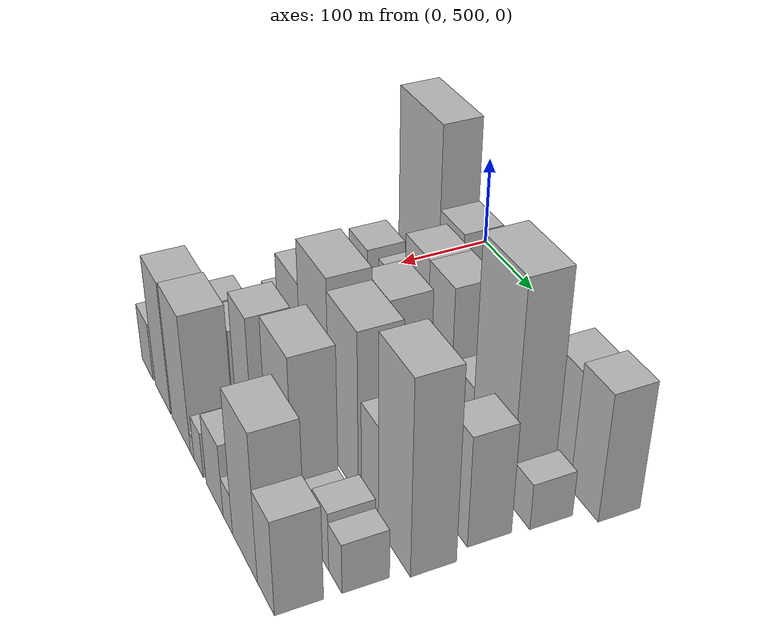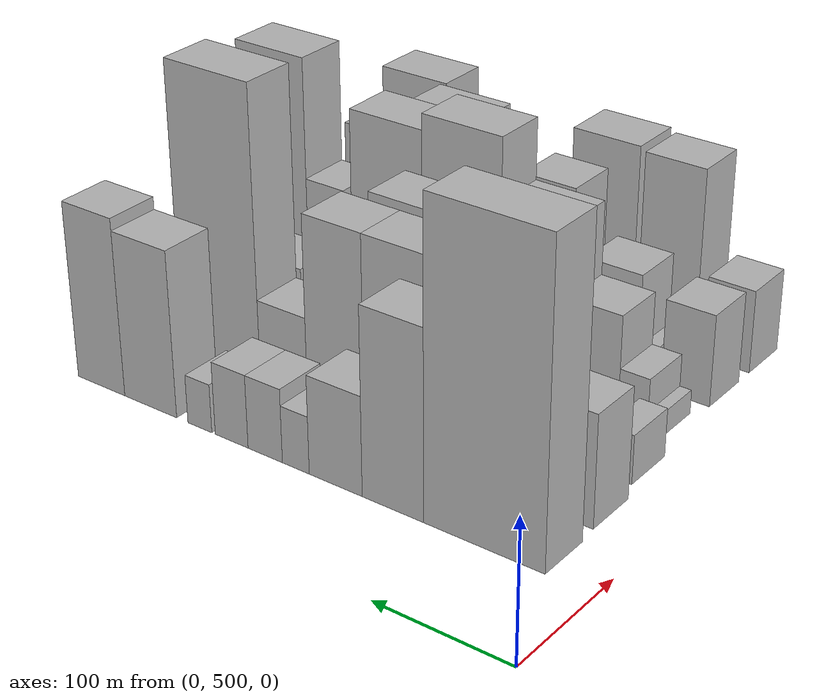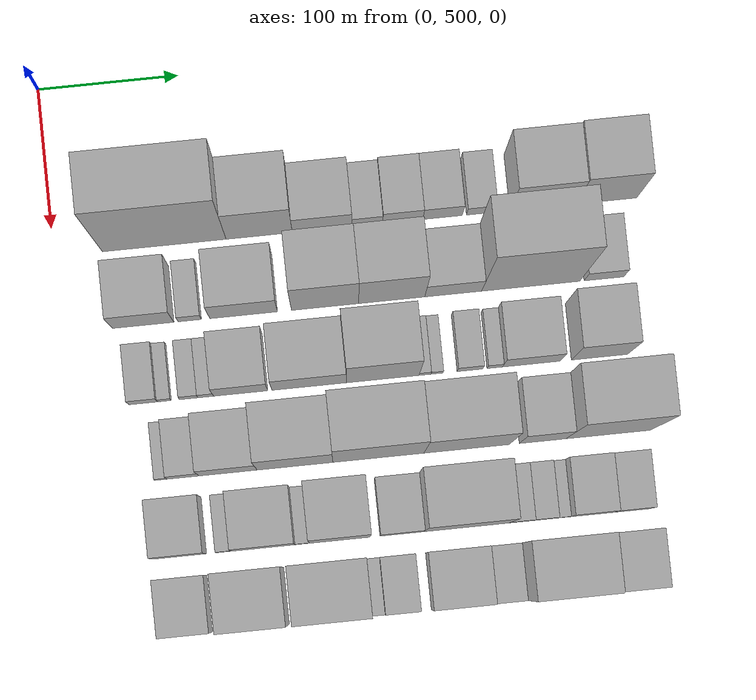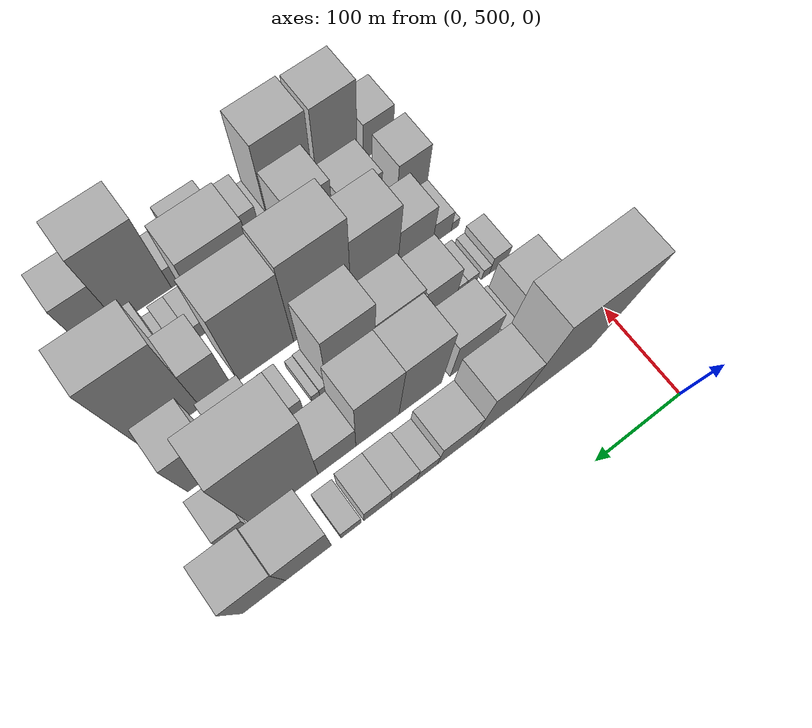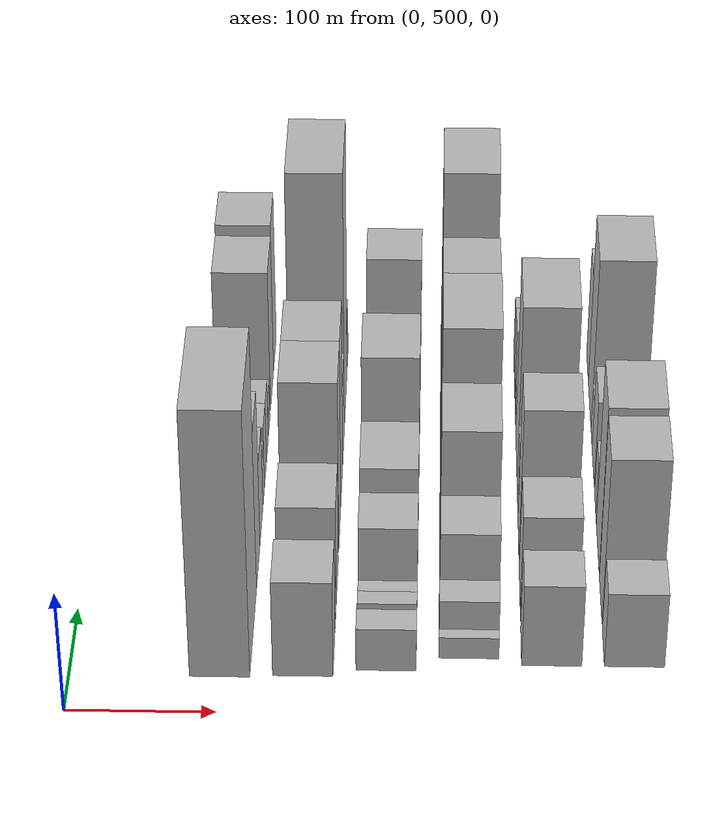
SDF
<sdf version="1.6">
 <world name="default">
  <model name="building_43">
   <static>1</static>
   <pose>100.0000 578.4180 0 0.000000 0.000000 0.000000</pose>
   <link name="link">
    <pose>0 0 111.00 0 0 0</pose>
    <collision name="collision"><geometry><box><size>40.0000 88.1057 222.0000</size></box></geometry></collision>
    <visual name="visual">
     <cast_shadows>0</cast_shadows>
     <geometry><box><size>40.0000 88.1057 222.0000</size></box></geometry>
     <material>
      <script>
       <uri>model://HANNAS_wall/materials/scripts</uri>
       <uri>model://HANNAS_wall/materials/textures</uri>
       <name>vrc/HANNAS_wall</name>
      </script>
     </material>
    </visual>
   </link>
  </model>
  <model name="building_44">
   <static>1</static>
   <pose>100.0000 646.0430 0 0.000000 0.000000 0.000000</pose>
   <link name="link">
    <pose>0 0 67.50 0 0 0</pose>
    <collision name="collision"><geometry><box><size>40.0000 47.1443 135.0000</size></box></geometry></collision>
    <visual name="visual">
     <cast_shadows>0</cast_shadows>
     <geometry><box><size>40.0000 47.1443 135.0000</size></box></geometry>
     <material>
      <script>
       <uri>model://HANNAS_wall/materials/scripts</uri>
       <uri>model://HANNAS_wall/materials/textures</uri>
       <name>vrc/HANNAS_wall</name>
      </script>
     </material>
    </visual>
   </link>
  </model>
  <model name="building_45">
   <static>1</static>
   <pose>100.0000 690.7508 0 0.000000 0.000000 0.000000</pose>
   <link name="link">
    <pose>0 0 36.00 0 0 0</pose>
    <collision name="collision"><geometry><box><size>40.0000 42.2714 72.0000</size></box></geometry></collision>
    <visual name="visual">
     <cast_shadows>0</cast_shadows>
     <geometry><box><size>40.0000 42.2714 72.0000</size></box></geometry>
     <material>
      <script>
       <uri>model://HANNAS_wall/materials/scripts</uri>
       <uri>model://HANNAS_wall/materials/textures</uri>
       <name>vrc/HANNAS_wall</name>
      </script>
     </material>
    </visual>
   </link>
  </model>
  <model name="building_46">
   <static>1</static>
   <pose>100.0000 722.8880 0 0.000000 0.000000 0.000000</pose>
   <link name="link">
    <pose>0 0 21.00 0 0 0</pose>
    <collision name="collision"><geometry><box><size>40.0000 22.0030 42.0000</size></box></geometry></collision>
    <visual name="visual">
     <cast_shadows>0</cast_shadows>
     <geometry><box><size>40.0000 22.0030 42.0000</size></box></geometry>
     <material>
      <script>
       <uri>model://HANNAS_wall/materials/scripts</uri>
       <uri>model://HANNAS_wall/materials/textures</uri>
       <name>vrc/HANNAS_wall</name>
      </script>
     </material>
    </visual>
   </link>
  </model>
  <model name="building_47">
   <static>1</static>
   <pose>100.0000 748.2559 0 0.000000 0.000000 0.000000</pose>
   <link name="link">
    <pose>0 0 27.00 0 0 0</pose>
    <collision name="collision"><geometry><box><size>40.0000 28.7328 54.0000</size></box></geometry></collision>
    <visual name="visual">
     <cast_shadows>0</cast_shadows>
     <geometry><box><size>40.0000 28.7328 54.0000</size></box></geometry>
     <material>
      <script>
       <uri>model://HANNAS_wall/materials/scripts</uri>
       <uri>model://HANNAS_wall/materials/textures</uri>
       <name>vrc/HANNAS_wall</name>
      </script>
     </material>
    </visual>
   </link>
  </model>
  <model name="building_48">
   <static>1</static>
   <pose>100.0000 776.6909 0 0.000000 0.000000 0.000000</pose>
   <link name="link">
    <pose>0 0 27.00 0 0 0</pose>
    <collision name="collision"><geometry><box><size>40.0000 28.1374 54.0000</size></box></geometry></collision>
    <visual name="visual">
     <cast_shadows>0</cast_shadows>
     <geometry><box><size>40.0000 28.1374 54.0000</size></box></geometry>
     <material>
      <script>
       <uri>model://HANNAS_wall/materials/scripts</uri>
       <uri>model://HANNAS_wall/materials/textures</uri>
       <name>vrc/HANNAS_wall</name>
      </script>
     </material>
    </visual>
   </link>
  </model>
  <model name="building_49">
   <static>1</static>
   <pose>100.0000 804.2277 0 0.000000 0.000000 0.000000</pose>
   <link name="link">
    <pose>0 0 18.00 0 0 0</pose>
    <collision name="collision"><geometry><box><size>40.0000 20.9361 36.0000</size></box></geometry></collision>
    <visual name="visual">
     <cast_shadows>0</cast_shadows>
     <geometry><box><size>40.0000 20.9361 36.0000</size></box></geometry>
     <material>
      <script>
       <uri>model://HANNAS_wall/materials/scripts</uri>
       <uri>model://HANNAS_wall/materials/textures</uri>
       <name>vrc/HANNAS_wall</name>
      </script>
     </material>
    </visual>
   </link>
  </model>
  <model name="building_50">
   <static>1</static>
   <pose>100.0000 848.2272 0 0.000000 0.000000 0.000000</pose>
   <link name="link">
    <pose>0 0 61.50 0 0 0</pose>
    <collision name="collision"><geometry><box><size>40.0000 47.0630 123.0000</size></box></geometry></collision>
    <visual name="visual">
     <cast_shadows>0</cast_shadows>
     <geometry><box><size>40.0000 47.0630 123.0000</size></box></geometry>
     <material>
      <script>
       <uri>model://HANNAS_wall/materials/scripts</uri>
       <uri>model://HANNAS_wall/materials/textures</uri>
       <name>vrc/HANNAS_wall</name>
      </script>
     </material>
    </visual>
   </link>
  </model>
  <model name="building_51">
   <static>1</static>
   <pose>100.0000 893.5522 0 0.000000 0.000000 0.000000</pose>
   <link name="link">
    <pose>0 0 66.00 0 0 0</pose>
    <collision name="collision"><geometry><box><size>40.0000 43.5870 132.0000</size></box></geometry></collision>
    <visual name="visual">
     <cast_shadows>0</cast_shadows>
     <geometry><box><size>40.0000 43.5870 132.0000</size></box></geometry>
     <material>
      <script>
       <uri>model://HANNAS_wall/materials/scripts</uri>
       <uri>model://HANNAS_wall/materials/textures</uri>
       <name>vrc/HANNAS_wall</name>
      </script>
     </material>
    </visual>
   </link>
  </model>
  <model name="building_93">
   <static>1</static>
   <pose>155.0000 558.0868 0 0.000000 0.000000 0.000000</pose>
   <link name="link">
    <pose>0 0 40.50 0 0 0</pose>
    <collision name="collision"><geometry><box><size>40.0000 43.7610 81.0000</size></box></geometry></collision>
    <visual name="visual">
     <cast_shadows>0</cast_shadows>
     <geometry><box><size>40.0000 43.7610 81.0000</size></box></geometry>
     <material>
      <script>
       <uri>model://HANNAS_wall/materials/scripts</uri>
       <uri>model://HANNAS_wall/materials/textures</uri>
       <name>vrc/HANNAS_wall</name>
      </script>
     </material>
    </visual>
   </link>
  </model>
  <model name="building_94">
   <static>1</static>
   <pose>155.0000 591.2206 0 0.000000 0.000000 0.000000</pose>
   <link name="link">
    <pose>0 0 16.50 0 0 0</pose>
    <collision name="collision"><geometry><box><size>40.0000 16.5066 33.0000</size></box></geometry></collision>
    <visual name="visual">
     <cast_shadows>0</cast_shadows>
     <geometry><box><size>40.0000 16.5066 33.0000</size></box></geometry>
     <material>
      <script>
       <uri>model://HANNAS_wall/materials/scripts</uri>
       <uri>model://HANNAS_wall/materials/textures</uri>
       <name>vrc/HANNAS_wall</name>
      </script>
     </material>
    </visual>
   </link>
  </model>
  <model name="building_95">
   <static>1</static>
   <pose>155.0000 629.5169 0 0.000000 0.000000 0.000000</pose>
   <link name="link">
    <pose>0 0 43.50 0 0 0</pose>
    <collision name="collision"><geometry><box><size>40.0000 48.0860 87.0000</size></box></geometry></collision>
    <visual name="visual">
     <cast_shadows>0</cast_shadows>
     <geometry><box><size>40.0000 48.0860 87.0000</size></box></geometry>
     <material>
      <script>
       <uri>model://HANNAS_wall/materials/scripts</uri>
       <uri>model://HANNAS_wall/materials/textures</uri>
       <name>vrc/HANNAS_wall</name>
      </script>
     </material>
    </visual>
   </link>
  </model>
  <model name="building_96">
   <static>1</static>
   <pose>155.0000 687.3685 0 0.000000 0.000000 0.000000</pose>
   <link name="link">
    <pose>0 0 73.50 0 0 0</pose>
    <collision name="collision"><geometry><box><size>40.0000 47.6174 147.0000</size></box></geometry></collision>
    <visual name="visual">
     <cast_shadows>0</cast_shadows>
     <geometry><box><size>40.0000 47.6174 147.0000</size></box></geometry>
     <material>
      <script>
       <uri>model://HANNAS_wall/materials/scripts</uri>
       <uri>model://HANNAS_wall/materials/textures</uri>
       <name>vrc/HANNAS_wall</name>
      </script>
     </material>
    </visual>
   </link>
  </model>
  <model name="building_97">
   <static>1</static>
   <pose>155.0000 734.7473 0 0.000000 0.000000 0.000000</pose>
   <link name="link">
    <pose>0 0 73.50 0 0 0</pose>
    <collision name="collision"><geometry><box><size>40.0000 47.1403 147.0000</size></box></geometry></collision>
    <visual name="visual">
     <cast_shadows>0</cast_shadows>
     <geometry><box><size>40.0000 47.1403 147.0000</size></box></geometry>
     <material>
      <script>
       <uri>model://HANNAS_wall/materials/scripts</uri>
       <uri>model://HANNAS_wall/materials/textures</uri>
       <name>vrc/HANNAS_wall</name>
      </script>
     </material>
    </visual>
   </link>
  </model>
  <model name="building_98">
   <static>1</static>
   <pose>155.0000 778.5762 0 0.000000 0.000000 0.000000</pose>
   <link name="link">
    <pose>0 0 36.00 0 0 0</pose>
    <collision name="collision"><geometry><box><size>40.0000 40.5175 72.0000</size></box></geometry></collision>
    <visual name="visual">
     <cast_shadows>0</cast_shadows>
     <geometry><box><size>40.0000 40.5175 72.0000</size></box></geometry>
     <material>
      <script>
       <uri>model://HANNAS_wall/materials/scripts</uri>
       <uri>model://HANNAS_wall/materials/textures</uri>
       <name>vrc/HANNAS_wall</name>
      </script>
     </material>
    </visual>
   </link>
  </model>
  <model name="building_99">
   <static>1</static>
   <pose>155.0000 833.8166 0 0.000000 0.000000 0.000000</pose>
   <link name="link">
    <pose>0 0 112.50 0 0 0</pose>
    <collision name="collision"><geometry><box><size>40.0000 69.9632 225.0000</size></box></geometry></collision>
    <visual name="visual">
     <cast_shadows>0</cast_shadows>
     <geometry><box><size>40.0000 69.9632 225.0000</size></box></geometry>
     <material>
      <script>
       <uri>model://HANNAS_wall/materials/scripts</uri>
       <uri>model://HANNAS_wall/materials/textures</uri>
       <name>vrc/HANNAS_wall</name>
      </script>
     </material>
    </visual>
   </link>
  </model>
  <model name="building_100">
   <static>1</static>
   <pose>155.0000 885.9425 0 0.000000 0.000000 0.000000</pose>
   <link name="link">
    <pose>0 0 24.00 0 0 0</pose>
    <collision name="collision"><geometry><box><size>40.0000 28.2886 48.0000</size></box></geometry></collision>
    <visual name="visual">
     <cast_shadows>0</cast_shadows>
     <geometry><box><size>40.0000 28.2886 48.0000</size></box></geometry>
     <material>
      <script>
       <uri>model://HANNAS_wall/materials/scripts</uri>
       <uri>model://HANNAS_wall/materials/textures</uri>
       <name>vrc/HANNAS_wall</name>
      </script>
     </material>
    </visual>
   </link>
  </model>
  <model name="building_141">
   <static>1</static>
   <pose>210.0000 552.9837 0 0.000000 0.000000 0.000000</pose>
   <link name="link">
    <pose>0 0 18.00 0 0 0</pose>
    <collision name="collision"><geometry><box><size>40.0000 20.4572 36.0000</size></box></geometry></collision>
    <visual name="visual">
     <cast_shadows>0</cast_shadows>
     <geometry><box><size>40.0000 20.4572 36.0000</size></box></geometry>
     <material>
      <script>
       <uri>model://HANNAS_wall/materials/scripts</uri>
       <uri>model://HANNAS_wall/materials/textures</uri>
       <name>vrc/HANNAS_wall</name>
      </script>
     </material>
    </visual>
   </link>
  </model>
  <model name="building_142">
   <static>1</static>
   <pose>210.0000 567.9849 0 0.000000 0.000000 0.000000</pose>
   <link name="link">
    <pose>0 0 10.50 0 0 0</pose>
    <collision name="collision"><geometry><box><size>40.0000 9.5453 21.0000</size></box></geometry></collision>
    <visual name="visual">
     <cast_shadows>0</cast_shadows>
     <geometry><box><size>40.0000 9.5453 21.0000</size></box></geometry>
     <material>
      <script>
       <uri>model://HANNAS_wall/materials/scripts</uri>
       <uri>model://HANNAS_wall/materials/textures</uri>
       <name>vrc/HANNAS_wall</name>
      </script>
     </material>
    </visual>
   </link>
  </model>
  <model name="building_143">
   <static>1</static>
   <pose>210.0000 585.3094 0 0.000000 0.000000 0.000000</pose>
   <link name="link">
    <pose>0 0 13.50 0 0 0</pose>
    <collision name="collision"><geometry><box><size>40.0000 13.1037 27.0000</size></box></geometry></collision>
    <visual name="visual">
     <cast_shadows>0</cast_shadows>
     <geometry><box><size>40.0000 13.1037 27.0000</size></box></geometry>
     <material>
      <script>
       <uri>model://HANNAS_wall/materials/scripts</uri>
       <uri>model://HANNAS_wall/materials/textures</uri>
       <name>vrc/HANNAS_wall</name>
      </script>
     </material>
    </visual>
   </link>
  </model>
  <model name="building_144">
   <static>1</static>
   <pose>210.0000 597.3687 0 0.000000 0.000000 0.000000</pose>
   <link name="link">
    <pose>0 0 13.50 0 0 0</pose>
    <collision name="collision"><geometry><box><size>40.0000 11.0148 27.0000</size></box></geometry></collision>
    <visual name="visual">
     <cast_shadows>0</cast_shadows>
     <geometry><box><size>40.0000 11.0148 27.0000</size></box></geometry>
     <material>
      <script>
       <uri>model://HANNAS_wall/materials/scripts</uri>
       <uri>model://HANNAS_wall/materials/textures</uri>
       <name>vrc/HANNAS_wall</name>
      </script>
     </material>
    </visual>
   </link>
  </model>
  <model name="building_145">
   <static>1</static>
   <pose>210.0000 622.0674 0 0.000000 0.000000 0.000000</pose>
   <link name="link">
    <pose>0 0 36.00 0 0 0</pose>
    <collision name="collision"><geometry><box><size>40.0000 38.3825 72.0000</size></box></geometry></collision>
    <visual name="visual">
     <cast_shadows>0</cast_shadows>
     <geometry><box><size>40.0000 38.3825 72.0000</size></box></geometry>
     <material>
      <script>
       <uri>model://HANNAS_wall/materials/scripts</uri>
       <uri>model://HANNAS_wall/materials/textures</uri>
       <name>vrc/HANNAS_wall</name>
      </script>
     </material>
    </visual>
   </link>
  </model>
  <model name="building_146">
   <static>1</static>
   <pose>210.0000 670.5503 0 0.000000 0.000000 0.000000</pose>
   <link name="link">
    <pose>0 0 45.00 0 0 0</pose>
    <collision name="collision"><geometry><box><size>40.0000 52.5833 90.0000</size></box></geometry></collision>
    <visual name="visual">
     <cast_shadows>0</cast_shadows>
     <geometry><box><size>40.0000 52.5833 90.0000</size></box></geometry>
     <material>
      <script>
       <uri>model://HANNAS_wall/materials/scripts</uri>
       <uri>model://HANNAS_wall/materials/textures</uri>
       <name>vrc/HANNAS_wall</name>
      </script>
     </material>
    </visual>
   </link>
  </model>
  <model name="building_147">
   <static>1</static>
   <pose>210.0000 722.7126 0 0.000000 0.000000 0.000000</pose>
   <link name="link">
    <pose>0 0 72.00 0 0 0</pose>
    <collision name="collision"><geometry><box><size>40.0000 51.7413 144.0000</size></box></geometry></collision>
    <visual name="visual">
     <cast_shadows>0</cast_shadows>
     <geometry><box><size>40.0000 51.7413 144.0000</size></box></geometry>
     <material>
      <script>
       <uri>model://HANNAS_wall/materials/scripts</uri>
       <uri>model://HANNAS_wall/materials/textures</uri>
       <name>vrc/HANNAS_wall</name>
      </script>
     </material>
    </visual>
   </link>
  </model>
  <model name="building_148">
   <static>1</static>
   <pose>210.0000 752.8027 0 0.000000 0.000000 0.000000</pose>
   <link name="link">
    <pose>0 0 10.50 0 0 0</pose>
    <collision name="collision"><geometry><box><size>40.0000 8.4390 21.0000</size></box></geometry></collision>
    <visual name="visual">
     <cast_shadows>0</cast_shadows>
     <geometry><box><size>40.0000 8.4390 21.0000</size></box></geometry>
     <material>
      <script>
       <uri>model://HANNAS_wall/materials/scripts</uri>
       <uri>model://HANNAS_wall/materials/textures</uri>
       <name>vrc/HANNAS_wall</name>
      </script>
     </material>
    </visual>
   </link>
  </model>
  <model name="building_149">
   <static>1</static>
   <pose>210.0000 761.3507 0 0.000000 0.000000 0.000000</pose>
   <link name="link">
    <pose>0 0 9.00 0 0 0</pose>
    <collision name="collision"><geometry><box><size>40.0000 8.6570 18.0000</size></box></geometry></collision>
    <visual name="visual">
     <cast_shadows>0</cast_shadows>
     <geometry><box><size>40.0000 8.6570 18.0000</size></box></geometry>
     <material>
      <script>
       <uri>model://HANNAS_wall/materials/scripts</uri>
       <uri>model://HANNAS_wall/materials/textures</uri>
       <name>vrc/HANNAS_wall</name>
      </script>
     </material>
    </visual>
   </link>
  </model>
  <model name="building_150">
   <static>1</static>
   <pose>210.0000 784.7726 0 0.000000 0.000000 0.000000</pose>
   <link name="link">
    <pose>0 0 16.50 0 0 0</pose>
    <collision name="collision"><geometry><box><size>40.0000 18.1867 33.0000</size></box></geometry></collision>
    <visual name="visual">
     <cast_shadows>0</cast_shadows>
     <geometry><box><size>40.0000 18.1867 33.0000</size></box></geometry>
     <material>
      <script>
       <uri>model://HANNAS_wall/materials/scripts</uri>
       <uri>model://HANNAS_wall/materials/textures</uri>
       <name>vrc/HANNAS_wall</name>
      </script>
     </material>
    </visual>
   </link>
  </model>
  <model name="building_151">
   <static>1</static>
   <pose>210.0000 802.3585 0 0.000000 0.000000 0.000000</pose>
   <link name="link">
    <pose>0 0 13.50 0 0 0</pose>
    <collision name="collision"><geometry><box><size>40.0000 10.9849 27.0000</size></box></geometry></collision>
    <visual name="visual">
     <cast_shadows>0</cast_shadows>
     <geometry><box><size>40.0000 10.9849 27.0000</size></box></geometry>
     <material>
      <script>
       <uri>model://HANNAS_wall/materials/scripts</uri>
       <uri>model://HANNAS_wall/materials/textures</uri>
       <name>vrc/HANNAS_wall</name>
      </script>
     </material>
    </visual>
   </link>
  </model>
  <model name="building_152">
   <static>1</static>
   <pose>210.0000 828.3510 0 0.000000 0.000000 0.000000</pose>
   <link name="link">
    <pose>0 0 34.50 0 0 0</pose>
    <collision name="collision"><geometry><box><size>40.0000 41.0002 69.0000</size></box></geometry></collision>
    <visual name="visual">
     <cast_shadows>0</cast_shadows>
     <geometry><box><size>40.0000 41.0002 69.0000</size></box></geometry>
     <material>
      <script>
       <uri>model://HANNAS_wall/materials/scripts</uri>
       <uri>model://HANNAS_wall/materials/textures</uri>
       <name>vrc/HANNAS_wall</name>
      </script>
     </material>
    </visual>
   </link>
  </model>
  <model name="building_153">
   <static>1</static>
   <pose>210.0000 876.8654 0 0.000000 0.000000 0.000000</pose>
   <link name="link">
    <pose>0 0 57.00 0 0 0</pose>
    <collision name="collision"><geometry><box><size>40.0000 40.0284 114.0000</size></box></geometry></collision>
    <visual name="visual">
     <cast_shadows>0</cast_shadows>
     <geometry><box><size>40.0000 40.0284 114.0000</size></box></geometry>
     <material>
      <script>
       <uri>model://HANNAS_wall/materials/scripts</uri>
       <uri>model://HANNAS_wall/materials/textures</uri>
       <name>vrc/HANNAS_wall</name>
      </script>
     </material>
    </visual>
   </link>
  </model>
  <model name="building_192">
   <static>1</static>
   <pose>265.0000 560.3185 0 0.000000 0.000000 0.000000</pose>
   <link name="link">
    <pose>0 0 9.00 0 0 0</pose>
    <collision name="collision"><geometry><box><size>40.0000 8.8670 18.0000</size></box></geometry></collision>
    <visual name="visual">
     <cast_shadows>0</cast_shadows>
     <geometry><box><size>40.0000 8.8670 18.0000</size></box></geometry>
     <material>
      <script>
       <uri>model://HANNAS_wall/materials/scripts</uri>
       <uri>model://HANNAS_wall/materials/textures</uri>
       <name>vrc/HANNAS_wall</name>
      </script>
     </material>
    </visual>
   </link>
  </model>
  <model name="building_193">
   <static>1</static>
   <pose>265.0000 575.9900 0 0.000000 0.000000 0.000000</pose>
   <link name="link">
    <pose>0 0 21.00 0 0 0</pose>
    <collision name="collision"><geometry><box><size>40.0000 22.4760 42.0000</size></box></geometry></collision>
    <visual name="visual">
     <cast_shadows>0</cast_shadows>
     <geometry><box><size>40.0000 22.4760 42.0000</size></box></geometry>
     <material>
      <script>
       <uri>model://HANNAS_wall/materials/scripts</uri>
       <uri>model://HANNAS_wall/materials/textures</uri>
       <name>vrc/HANNAS_wall</name>
      </script>
     </material>
    </visual>
   </link>
  </model>
  <model name="building_194">
   <static>1</static>
   <pose>265.0000 607.7600 0 0.000000 0.000000 0.000000</pose>
   <link name="link">
    <pose>0 0 40.50 0 0 0</pose>
    <collision name="collision"><geometry><box><size>40.0000 41.0640 81.0000</size></box></geometry></collision>
    <visual name="visual">
     <cast_shadows>0</cast_shadows>
     <geometry><box><size>40.0000 41.0640 81.0000</size></box></geometry>
     <material>
      <script>
       <uri>model://HANNAS_wall/materials/scripts</uri>
       <uri>model://HANNAS_wall/materials/textures</uri>
       <name>vrc/HANNAS_wall</name>
      </script>
     </material>
    </visual>
   </link>
  </model>
  <model name="building_195">
   <static>1</static>
   <pose>265.0000 655.0810 0 0.000000 0.000000 0.000000</pose>
   <link name="link">
    <pose>0 0 67.50 0 0 0</pose>
    <collision name="collision"><geometry><box><size>40.0000 53.5781 135.0000</size></box></geometry></collision>
    <visual name="visual">
     <cast_shadows>0</cast_shadows>
     <geometry><box><size>40.0000 53.5781 135.0000</size></box></geometry>
     <material>
      <script>
       <uri>model://HANNAS_wall/materials/scripts</uri>
       <uri>model://HANNAS_wall/materials/textures</uri>
       <name>vrc/HANNAS_wall</name>
      </script>
     </material>
    </visual>
   </link>
  </model>
  <model name="building_196">
   <static>1</static>
   <pose>265.0000 714.1078 0 0.000000 0.000000 0.000000</pose>
   <link name="link">
    <pose>0 0 90.00 0 0 0</pose>
    <collision name="collision"><geometry><box><size>40.0000 64.4755 180.0000</size></box></geometry></collision>
    <visual name="visual">
     <cast_shadows>0</cast_shadows>
     <geometry><box><size>40.0000 64.4755 180.0000</size></box></geometry>
     <material>
      <script>
       <uri>model://HANNAS_wall/materials/scripts</uri>
       <uri>model://HANNAS_wall/materials/textures</uri>
       <name>vrc/HANNAS_wall</name>
      </script>
     </material>
    </visual>
   </link>
  </model>
  <model name="building_197">
   <static>1</static>
   <pose>265.0000 776.6723 0 0.000000 0.000000 0.000000</pose>
   <link name="link">
    <pose>0 0 84.00 0 0 0</pose>
    <collision name="collision"><geometry><box><size>40.0000 60.6535 168.0000</size></box></geometry></collision>
    <visual name="visual">
     <cast_shadows>0</cast_shadows>
     <geometry><box><size>40.0000 60.6535 168.0000</size></box></geometry>
     <material>
      <script>
       <uri>model://HANNAS_wall/materials/scripts</uri>
       <uri>model://HANNAS_wall/materials/textures</uri>
       <name>vrc/HANNAS_wall</name>
      </script>
     </material>
    </visual>
   </link>
  </model>
  <model name="building_198">
   <static>1</static>
   <pose>265.0000 830.5442 0 0.000000 0.000000 0.000000</pose>
   <link name="link">
    <pose>0 0 52.50 0 0 0</pose>
    <collision name="collision"><geometry><box><size>40.0000 33.0902 105.0000</size></box></geometry></collision>
    <visual name="visual">
     <cast_shadows>0</cast_shadows>
     <geometry><box><size>40.0000 33.0902 105.0000</size></box></geometry>
     <material>
      <script>
       <uri>model://HANNAS_wall/materials/scripts</uri>
       <uri>model://HANNAS_wall/materials/textures</uri>
       <name>vrc/HANNAS_wall</name>
      </script>
     </material>
    </visual>
   </link>
  </model>
  <model name="building_199">
   <static>1</static>
   <pose>265.0000 877.1063 0 0.000000 0.000000 0.000000</pose>
   <link name="link">
    <pose>0 0 97.50 0 0 0</pose>
    <collision name="collision"><geometry><box><size>40.0000 60.0341 195.0000</size></box></geometry></collision>
    <visual name="visual">
     <cast_shadows>0</cast_shadows>
     <geometry><box><size>40.0000 60.0341 195.0000</size></box></geometry>
     <material>
      <script>
       <uri>model://HANNAS_wall/materials/scripts</uri>
       <uri>model://HANNAS_wall/materials/textures</uri>
       <name>vrc/HANNAS_wall</name>
      </script>
     </material>
    </visual>
   </link>
  </model>
  <model name="building_239">
   <static>1</static>
   <pose>320.0000 568.3592 0 0.000000 0.000000 0.000000</pose>
   <link name="link">
    <pose>0 0 34.50 0 0 0</pose>
    <collision name="collision"><geometry><box><size>40.0000 37.2281 69.0000</size></box></geometry></collision>
    <visual name="visual">
     <cast_shadows>0</cast_shadows>
     <geometry><box><size>40.0000 37.2281 69.0000</size></box></geometry>
     <material>
      <script>
       <uri>model://HANNAS_wall/materials/scripts</uri>
       <uri>model://HANNAS_wall/materials/textures</uri>
       <name>vrc/HANNAS_wall</name>
      </script>
     </material>
    </visual>
   </link>
  </model>
  <model name="building_240">
   <static>1</static>
   <pose>320.0000 599.8256 0 0.000000 0.000000 0.000000</pose>
   <link name="link">
    <pose>0 0 13.50 0 0 0</pose>
    <collision name="collision"><geometry><box><size>40.0000 11.7046 27.0000</size></box></geometry></collision>
    <visual name="visual">
     <cast_shadows>0</cast_shadows>
     <geometry><box><size>40.0000 11.7046 27.0000</size></box></geometry>
     <material>
      <script>
       <uri>model://HANNAS_wall/materials/scripts</uri>
       <uri>model://HANNAS_wall/materials/textures</uri>
       <name>vrc/HANNAS_wall</name>
      </script>
     </material>
    </visual>
   </link>
  </model>
  <model name="building_241">
   <static>1</static>
   <pose>320.0000 627.7317 0 0.000000 0.000000 0.000000</pose>
   <link name="link">
    <pose>0 0 40.50 0 0 0</pose>
    <collision name="collision"><geometry><box><size>40.0000 44.1077 81.0000</size></box></geometry></collision>
    <visual name="visual">
     <cast_shadows>0</cast_shadows>
     <geometry><box><size>40.0000 44.1077 81.0000</size></box></geometry>
     <material>
      <script>
       <uri>model://HANNAS_wall/materials/scripts</uri>
       <uri>model://HANNAS_wall/materials/textures</uri>
       <name>vrc/HANNAS_wall</name>
      </script>
     </material>
    </visual>
   </link>
  </model>
  <model name="building_242">
   <static>1</static>
   <pose>320.0000 654.8857 0 0.000000 0.000000 0.000000</pose>
   <link name="link">
    <pose>0 0 12.00 0 0 0</pose>
    <collision name="collision"><geometry><box><size>40.0000 10.2003 24.0000</size></box></geometry></collision>
    <visual name="visual">
     <cast_shadows>0</cast_shadows>
     <geometry><box><size>40.0000 10.2003 24.0000</size></box></geometry>
     <material>
      <script>
       <uri>model://HANNAS_wall/materials/scripts</uri>
       <uri>model://HANNAS_wall/materials/textures</uri>
       <name>vrc/HANNAS_wall</name>
      </script>
     </material>
    </visual>
   </link>
  </model>
  <model name="building_243">
   <static>1</static>
   <pose>320.0000 681.2996 0 0.000000 0.000000 0.000000</pose>
   <link name="link">
    <pose>0 0 64.50 0 0 0</pose>
    <collision name="collision"><geometry><box><size>40.0000 42.6274 129.0000</size></box></geometry></collision>
    <visual name="visual">
     <cast_shadows>0</cast_shadows>
     <geometry><box><size>40.0000 42.6274 129.0000</size></box></geometry>
     <material>
      <script>
       <uri>model://HANNAS_wall/materials/scripts</uri>
       <uri>model://HANNAS_wall/materials/textures</uri>
       <name>vrc/HANNAS_wall</name>
      </script>
     </material>
    </visual>
   </link>
  </model>
  <model name="building_244">
   <static>1</static>
   <pose>320.0000 725.0393 0 0.000000 0.000000 0.000000</pose>
   <link name="link">
    <pose>0 0 27.00 0 0 0</pose>
    <collision name="collision"><geometry><box><size>40.0000 30.8520 54.0000</size></box></geometry></collision>
    <visual name="visual">
     <cast_shadows>0</cast_shadows>
     <geometry><box><size>40.0000 30.8520 54.0000</size></box></geometry>
     <material>
      <script>
       <uri>model://HANNAS_wall/materials/scripts</uri>
       <uri>model://HANNAS_wall/materials/textures</uri>
       <name>vrc/HANNAS_wall</name>
      </script>
     </material>
    </visual>
   </link>
  </model>
  <model name="building_245">
   <static>1</static>
   <pose>320.0000 770.4628 0 0.000000 0.000000 0.000000</pose>
   <link name="link">
    <pose>0 0 78.00 0 0 0</pose>
    <collision name="collision"><geometry><box><size>40.0000 59.9950 156.0000</size></box></geometry></collision>
    <visual name="visual">
     <cast_shadows>0</cast_shadows>
     <geometry><box><size>40.0000 59.9950 156.0000</size></box></geometry>
     <material>
      <script>
       <uri>model://HANNAS_wall/materials/scripts</uri>
       <uri>model://HANNAS_wall/materials/textures</uri>
       <name>vrc/HANNAS_wall</name>
      </script>
     </material>
    </visual>
   </link>
  </model>
  <model name="building_246">
   <static>1</static>
   <pose>320.0000 809.4213 0 0.000000 0.000000 0.000000</pose>
   <link name="link">
    <pose>0 0 15.00 0 0 0</pose>
    <collision name="collision"><geometry><box><size>40.0000 17.9221 30.0000</size></box></geometry></collision>
    <visual name="visual">
     <cast_shadows>0</cast_shadows>
     <geometry><box><size>40.0000 17.9221 30.0000</size></box></geometry>
     <material>
      <script>
       <uri>model://HANNAS_wall/materials/scripts</uri>
       <uri>model://HANNAS_wall/materials/textures</uri>
       <name>vrc/HANNAS_wall</name>
      </script>
     </material>
    </visual>
   </link>
  </model>
  <model name="building_247">
   <static>1</static>
   <pose>320.0000 826.6800 0 0.000000 0.000000 0.000000</pose>
   <link name="link">
    <pose>0 0 15.00 0 0 0</pose>
    <collision name="collision"><geometry><box><size>40.0000 16.5954 30.0000</size></box></geometry></collision>
    <visual name="visual">
     <cast_shadows>0</cast_shadows>
     <geometry><box><size>40.0000 16.5954 30.0000</size></box></geometry>
     <material>
      <script>
       <uri>model://HANNAS_wall/materials/scripts</uri>
       <uri>model://HANNAS_wall/materials/textures</uri>
       <name>vrc/HANNAS_wall</name>
      </script>
     </material>
    </visual>
   </link>
  </model>
  <model name="building_248">
   <static>1</static>
   <pose>320.0000 839.4771 0 0.000000 0.000000 0.000000</pose>
   <link name="link">
    <pose>0 0 9.00 0 0 0</pose>
    <collision name="collision"><geometry><box><size>40.0000 8.9989 18.0000</size></box></geometry></collision>
    <visual name="visual">
     <cast_shadows>0</cast_shadows>
     <geometry><box><size>40.0000 8.9989 18.0000</size></box></geometry>
     <material>
      <script>
       <uri>model://HANNAS_wall/materials/scripts</uri>
       <uri>model://HANNAS_wall/materials/textures</uri>
       <name>vrc/HANNAS_wall</name>
      </script>
     </material>
    </visual>
   </link>
  </model>
  <model name="building_249">
   <static>1</static>
   <pose>320.0000 859.4286 0 0.000000 0.000000 0.000000</pose>
   <link name="link">
    <pose>0 0 30.00 0 0 0</pose>
    <collision name="collision"><geometry><box><size>40.0000 30.9041 60.0000</size></box></geometry></collision>
    <visual name="visual">
     <cast_shadows>0</cast_shadows>
     <geometry><box><size>40.0000 30.9041 60.0000</size></box></geometry>
     <material>
      <script>
       <uri>model://HANNAS_wall/materials/scripts</uri>
       <uri>model://HANNAS_wall/materials/textures</uri>
       <name>vrc/HANNAS_wall</name>
      </script>
     </material>
    </visual>
   </link>
  </model>
  <model name="building_250">
   <static>1</static>
   <pose>320.0000 887.9129 0 0.000000 0.000000 0.000000</pose>
   <link name="link">
    <pose>0 0 25.50 0 0 0</pose>
    <collision name="collision"><geometry><box><size>40.0000 26.0645 51.0000</size></box></geometry></collision>
    <visual name="visual">
     <cast_shadows>0</cast_shadows>
     <geometry><box><size>40.0000 26.0645 51.0000</size></box></geometry>
     <material>
      <script>
       <uri>model://HANNAS_wall/materials/scripts</uri>
       <uri>model://HANNAS_wall/materials/textures</uri>
       <name>vrc/HANNAS_wall</name>
      </script>
     </material>
    </visual>
   </link>
  </model>
  <model name="building_288">
   <static>1</static>
   <pose>375.0000 567.8418 0 0.000000 0.000000 0.000000</pose>
   <link name="link">
    <pose>0 0 31.50 0 0 0</pose>
    <collision name="collision"><geometry><box><size>40.0000 35.9245 63.0000</size></box></geometry></collision>
    <visual name="visual">
     <cast_shadows>0</cast_shadows>
     <geometry><box><size>40.0000 35.9245 63.0000</size></box></geometry>
     <material>
      <script>
       <uri>model://HANNAS_wall/materials/scripts</uri>
       <uri>model://HANNAS_wall/materials/textures</uri>
       <name>vrc/HANNAS_wall</name>
      </script>
     </material>
    </visual>
   </link>
  </model>
  <model name="building_289">
   <static>1</static>
   <pose>375.0000 616.4581 0 0.000000 0.000000 0.000000</pose>
   <link name="link">
    <pose>0 0 70.50 0 0 0</pose>
    <collision name="collision"><geometry><box><size>40.0000 47.3081 141.0000</size></box></geometry></collision>
    <visual name="visual">
     <cast_shadows>0</cast_shadows>
     <geometry><box><size>40.0000 47.3081 141.0000</size></box></geometry>
     <material>
      <script>
       <uri>model://HANNAS_wall/materials/scripts</uri>
       <uri>model://HANNAS_wall/materials/textures</uri>
       <name>vrc/HANNAS_wall</name>
      </script>
     </material>
    </visual>
   </link>
  </model>
  <model name="building_290">
   <static>1</static>
   <pose>375.0000 670.9148 0 0.000000 0.000000 0.000000</pose>
   <link name="link">
    <pose>0 0 72.00 0 0 0</pose>
    <collision name="collision"><geometry><box><size>40.0000 53.6053 144.0000</size></box></geometry></collision>
    <visual name="visual">
     <cast_shadows>0</cast_shadows>
     <geometry><box><size>40.0000 53.6053 144.0000</size></box></geometry>
     <material>
      <script>
       <uri>model://HANNAS_wall/materials/scripts</uri>
       <uri>model://HANNAS_wall/materials/textures</uri>
       <name>vrc/HANNAS_wall</name>
      </script>
     </material>
    </visual>
   </link>
  </model>
  <model name="building_291">
   <static>1</static>
   <pose>375.0000 702.5835 0 0.000000 0.000000 0.000000</pose>
   <link name="link">
    <pose>0 0 12.00 0 0 0</pose>
    <collision name="collision"><geometry><box><size>40.0000 9.7321 24.0000</size></box></geometry></collision>
    <visual name="visual">
     <cast_shadows>0</cast_shadows>
     <geometry><box><size>40.0000 9.7321 24.0000</size></box></geometry>
     <material>
      <script>
       <uri>model://HANNAS_wall/materials/scripts</uri>
       <uri>model://HANNAS_wall/materials/textures</uri>
       <name>vrc/HANNAS_wall</name>
      </script>
     </material>
    </visual>
   </link>
  </model>
  <model name="building_292">
   <static>1</static>
   <pose>375.0000 719.8718 0 0.000000 0.000000 0.000000</pose>
   <link name="link">
    <pose>0 0 24.00 0 0 0</pose>
    <collision name="collision"><geometry><box><size>40.0000 24.8444 48.0000</size></box></geometry></collision>
    <visual name="visual">
     <cast_shadows>0</cast_shadows>
     <geometry><box><size>40.0000 24.8444 48.0000</size></box></geometry>
     <material>
      <script>
       <uri>model://HANNAS_wall/materials/scripts</uri>
       <uri>model://HANNAS_wall/materials/textures</uri>
       <name>vrc/HANNAS_wall</name>
      </script>
     </material>
    </visual>
   </link>
  </model>
  <model name="building_293">
   <static>1</static>
   <pose>375.0000 761.8816 0 0.000000 0.000000 0.000000</pose>
   <link name="link">
    <pose>0 0 37.50 0 0 0</pose>
    <collision name="collision"><geometry><box><size>40.0000 43.1754 75.0000</size></box></geometry></collision>
    <visual name="visual">
     <cast_shadows>0</cast_shadows>
     <geometry><box><size>40.0000 43.1754 75.0000</size></box></geometry>
     <material>
      <script>
       <uri>model://HANNAS_wall/materials/scripts</uri>
       <uri>model://HANNAS_wall/materials/textures</uri>
       <name>vrc/HANNAS_wall</name>
      </script>
     </material>
    </visual>
   </link>
  </model>
  <model name="building_294">
   <static>1</static>
   <pose>375.0000 794.9503 0 0.000000 0.000000 0.000000</pose>
   <link name="link">
    <pose>0 0 21.00 0 0 0</pose>
    <collision name="collision"><geometry><box><size>40.0000 22.9619 42.0000</size></box></geometry></collision>
    <visual name="visual">
     <cast_shadows>0</cast_shadows>
     <geometry><box><size>40.0000 22.9619 42.0000</size></box></geometry>
     <material>
      <script>
       <uri>model://HANNAS_wall/materials/scripts</uri>
       <uri>model://HANNAS_wall/materials/textures</uri>
       <name>vrc/HANNAS_wall</name>
      </script>
     </material>
    </visual>
   </link>
  </model>
  <model name="building_295">
   <static>1</static>
   <pose>375.0000 835.1157 0 0.000000 0.000000 0.000000</pose>
   <link name="link">
    <pose>0 0 75.00 0 0 0</pose>
    <collision name="collision"><geometry><box><size>40.0000 57.3689 150.0000</size></box></geometry></collision>
    <visual name="visual">
     <cast_shadows>0</cast_shadows>
     <geometry><box><size>40.0000 57.3689 150.0000</size></box></geometry>
     <material>
      <script>
       <uri>model://HANNAS_wall/materials/scripts</uri>
       <uri>model://HANNAS_wall/materials/textures</uri>
       <name>vrc/HANNAS_wall</name>
      </script>
     </material>
    </visual>
   </link>
  </model>
  <model name="building_296">
   <static>1</static>
   <pose>375.0000 882.1572 0 0.000000 0.000000 0.000000</pose>
   <link name="link">
    <pose>0 0 48.00 0 0 0</pose>
    <collision name="collision"><geometry><box><size>40.0000 36.7141 96.0000</size></box></geometry></collision>
    <visual name="visual">
     <cast_shadows>0</cast_shadows>
     <geometry><box><size>40.0000 36.7141 96.0000</size></box></geometry>
     <material>
      <script>
       <uri>model://HANNAS_wall/materials/scripts</uri>
       <uri>model://HANNAS_wall/materials/textures</uri>
       <name>vrc/HANNAS_wall</name>
      </script>
     </material>
    </visual>
   </link>
  </model>
 </world>
</sdf>
